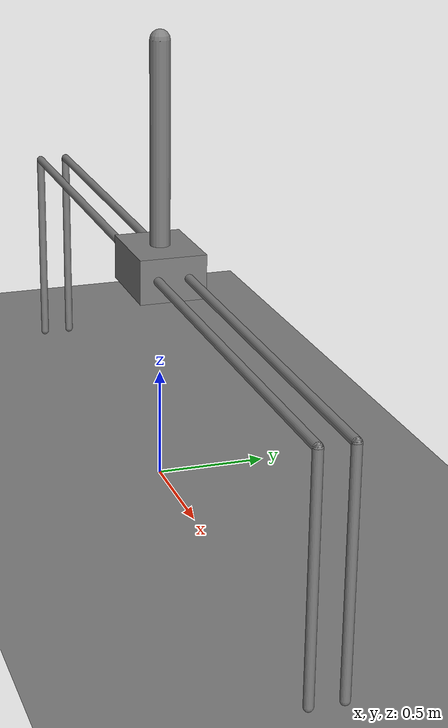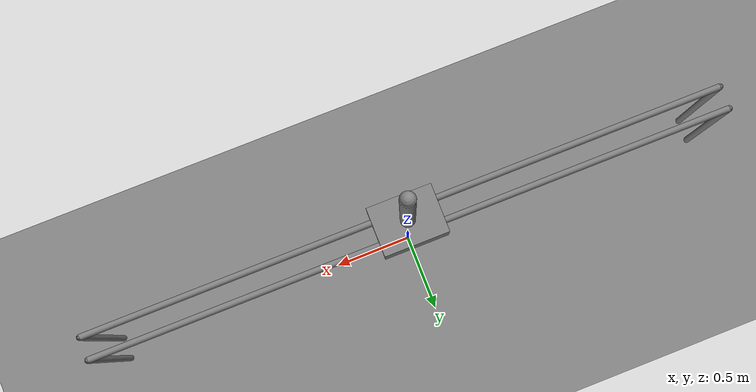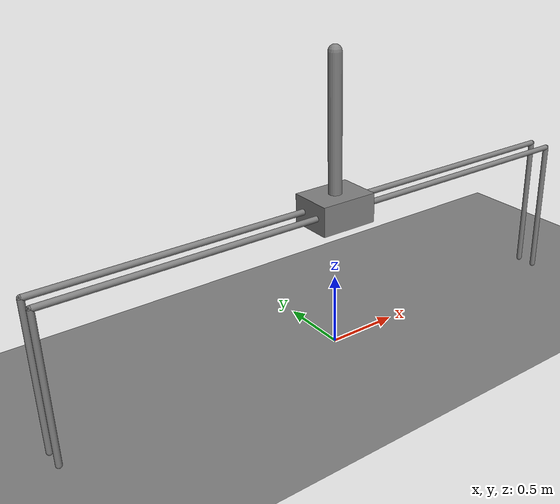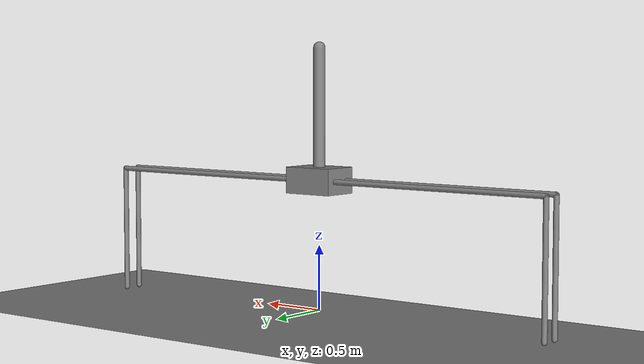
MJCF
<mujoco model="cart-pole">

  <option timestep="0.01" integrator="RK4">
    <flag contact="disable" energy="enable"/>
  </option>

  <default>
    <default class="pole">
      <joint type="hinge" axis="0 1 0"  damping="2e-6"/>
      <geom type="capsule" fromto="0 0 0 0 0 1" size="0.045" mass=".1"/>
    </default>
  </default>

  <worldbody>
    <light name="light" pos="0 0 6"/>
	<camera name="cam1" pos="0.000 -6.505 6.505" xyaxes="1.000 -0.000 0.000 0.000 0.707 0.707"/>

    <geom name="floor" pos="0 0 -.05" size="4 4 .2" type="plane"/>
    <geom name="rail1" type="capsule" pos="0  .07 1" zaxis="1 0 0" size="0.02 2"  />
    <geom name="rail1stand1" type="capsule" pos="-2 .07 0.5" zaxis="0 0 1" size="0.02 0.5"  />
    <geom name="rail1stand2" type="capsule" pos="2 .07 0.5" zaxis="0 0 1" size="0.02 0.5"  />
    <geom name="rail2" type="capsule" pos="0 -.07 1" zaxis="1 0 0" size="0.02 2"  />
    <geom name="rail2stand1" type="capsule" pos="-2 -.07 0.5" zaxis="0 0 1" size="0.02 0.5"  />
    <geom name="rail2stand2" type="capsule" pos="2 -.07 0.5" zaxis="0 0 1" size="0.02 0.5"  />
    <body name="cart" pos="0 0 1">
      <joint name="slider" type="slide" limited="true" axis="1 0 0" range="-1.8 1.8" solreflimit=".08 1" damping="5e-4"/>
      <geom name="cart" type="box" size="0.2 0.15 0.1" mass="1"/>
      <body name="pole_1" childclass="pole">
        <joint name="hinge_1"/>
        <geom name="pole_1"/>
      </body>
    </body>
  </worldbody>

  <actuator>
    <motor name="slide" joint="slider" gear="10" ctrllimited="true" ctrlrange="-1 1" />
  </actuator>
</mujoco>
